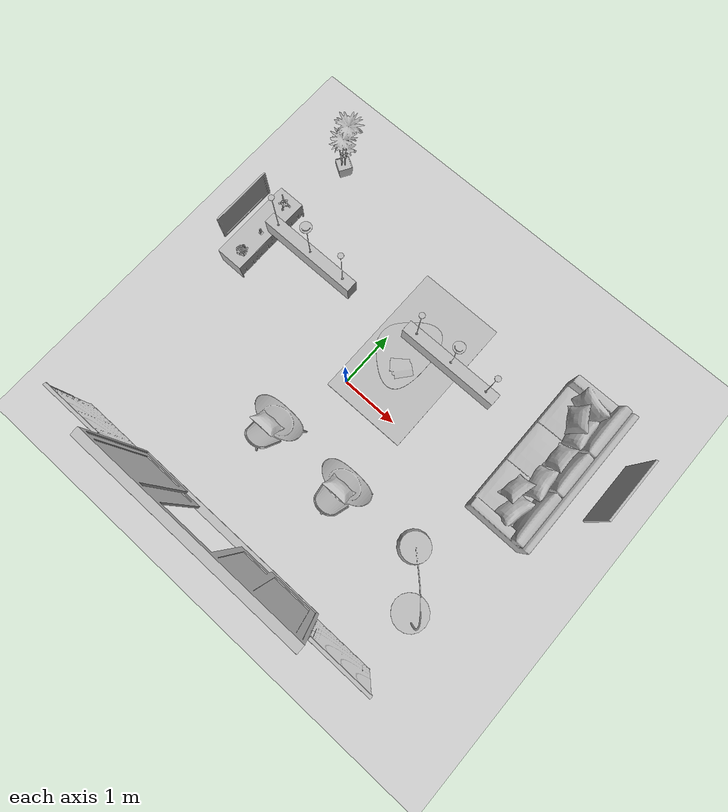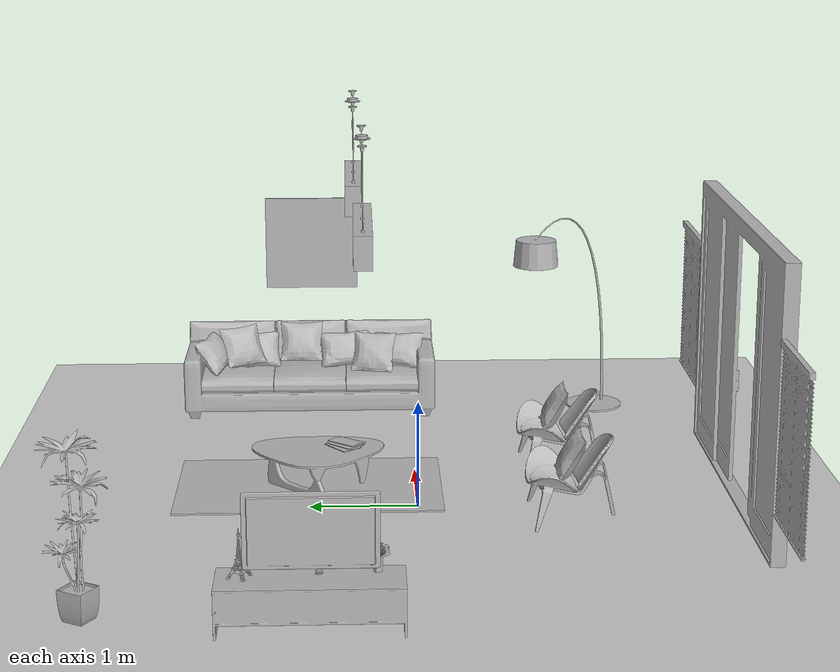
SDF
<sdf version="1.4">
 <world name="default">
  <light name="sun" type="directional">
   <pose>0 0 10 0 -0 0</pose>
   <diffuse>0.8 0.8 0.8 1</diffuse>
   <specular>0.2 0.2 0.2 1</specular>
   <attenuation>
    <range>1000</range>
    <constant>0.9</constant>
    <linear>0.01</linear>
    <quadratic>0.001</quadratic>
   </attenuation>
   <direction>-0.5 0.1 -0.9</direction>
  </light>
  <model name="ground_plane">
   <static>1</static>
   <link name="link">
    <collision name="collision">
     <geometry><plane><normal>0 0 1</normal><size>100 100</size></plane></geometry>
     <surface><friction><ode><mu>100</mu><mu2>50</mu2></ode></friction></surface>
    </collision>
    <visual name="visual">
     <cast_shadows>0</cast_shadows>
     <geometry><plane><normal>0 0 1</normal><size>100 100</size></plane></geometry>
     <material>
      <script><uri>file://media/materials/scripts/gazebo.material</uri><name>Gazebo/Grey</name></script>
     </material>
    </visual>
    <velocity_decay><linear>0</linear><angular>0</angular></velocity_decay>
   </link>
  </model>
  <physics type="ode">
   <max_step_size>0.001</max_step_size>
   <real_time_factor>1</real_time_factor>
   <real_time_update_rate>1000</real_time_update_rate>
   <gravity>0 0 -9.8</gravity>
  </physics>
  <scene><ambient>0.4 0.4 0.4 1</ambient><background>0.7 0.7 0.7 1</background><shadows>1</shadows></scene>
  <spherical_coordinates>
   <surface_model>EARTH_WGS84</surface_model>
   <latitude_deg>0</latitude_deg>
   <longitude_deg>0</longitude_deg>
   <elevation>0</elevation>
   <heading_deg>0</heading_deg>
  </spherical_coordinates>
  <model name="756_0">
   <pose>0.225038 -2.99594 0 0 0 -1.5708</pose>
   <static>1</static>
   <link name="link">
    <collision name="collision"><geometry><box><size>0.135 3.7 2</size></box></geometry></collision>
    <visual name="visual"><geometry><mesh><uri>model://756/756.dae</uri></mesh></geometry></visual>
    <velocity_decay><linear>0</linear><angular>0</angular></velocity_decay>
   </link>
  </model>
  <model name="s__1290_0">
   <pose>3.20716 1.05075 0.01 0 -0 3.14159</pose>
   <static>1</static>
   <link name="link">
    <collision name="collision"><geometry><box><size>1.05 2.64995 2</size></box></geometry></collision>
    <visual name="visual"><geometry><mesh><uri>model://s__1290/s__1290.dae</uri></mesh></geometry></visual>
    <velocity_decay><linear>0</linear><angular>0</angular></velocity_decay>
   </link>
  </model>
  <model name="s__1701_0">
   <pose>1.10371 -1.41456 0.01 0 -0 1.5708</pose>
   <static>1</static>
   <link name="link">
    <collision name="collision"><geometry><box><size>0.82 0.91 2</size></box></geometry></collision>
    <visual name="visual"><geometry><mesh><uri>model://s__1701/s__1701.dae</uri></mesh></geometry></visual>
    <velocity_decay><linear>0</linear><angular>0</angular></velocity_decay>
   </link>
  </model>
  <model name="238_0">
   <pose>0.551708 1.01475 0.01 0 -0 0</pose>
   <static>1</static>
   <link name="link">
    <collision name="collision"><geometry><box><size>1.5 2.5 0</size></box></geometry></collision>
    <visual name="visual"><geometry><mesh><uri>model://238/238.dae</uri></mesh></geometry></visual>
    <velocity_decay><linear>0</linear><angular>0</angular></velocity_decay>
   </link>
  </model>
  <model name="s__702_0">
   <pose>-2.72569 0.937162 0.01 0 -0 0</pose>
   <static>1</static>
   <link name="link">
    <collision name="collision"><geometry><box><size>0.48 1.5 2</size></box></geometry></collision>
    <visual name="visual"><geometry><mesh><uri>model://s__702/s__702.dae</uri></mesh></geometry></visual>
    <velocity_decay><linear>0</linear><angular>0</angular></velocity_decay>
   </link>
  </model>
  <model name="216_0">
   <pose>-2.9763 0.918757 0.60356 0 -0 0</pose>
   <static>1</static>
   <link name="link">
    <collision name="collision"><geometry><box><size>0.05 1.05992 2</size></box></geometry></collision>
    <visual name="visual"><geometry><mesh><uri>model://216/216.dae</uri></mesh></geometry></visual>
    <velocity_decay><linear>0</linear><angular>0</angular></velocity_decay>
   </link>
  </model>
  <model name="s__1720_0">
   <pose>0.395707 0.93075 0.01 0 -0 0</pose>
   <static>1</static>
   <link name="link">
    <collision name="collision"><geometry><box><size>0.9 1.25 2</size></box></geometry></collision>
    <visual name="visual"><geometry><mesh><uri>model://s__1720/s__1720.dae</uri></mesh></geometry></visual>
    <velocity_decay><linear>0</linear><angular>0</angular></velocity_decay>
   </link>
  </model>
  <model name="s__1819_0">
   <pose>-2.6479 0.870751 0.425926 0 -0 0</pose>
   <static>1</static>
   <link name="link">
    <collision name="collision"><geometry><box><size>0.07 0.06 2</size></box></geometry></collision>
    <visual name="visual"><geometry><mesh><uri>model://s__1819/s__1819.dae</uri></mesh></geometry></visual>
    <velocity_decay><linear>0</linear><angular>0</angular></velocity_decay>
   </link>
  </model>
  <model name="739_0">
   <pose>-2.60154 0.406961 0.418284 0 -0 0.349066</pose>
   <static>1</static>
   <link name="link">
    <collision name="collision"><geometry><box><size>0.206748 0.202036 2</size></box></geometry></collision>
    <visual name="visual"><geometry><mesh><uri>model://739/739.dae</uri></mesh></geometry></visual>
    <velocity_decay><linear>0</linear><angular>0</angular></velocity_decay>
   </link>
  </model>
  <model name="s__1845_0">
   <pose>-2.69926 1.48954 0.429934 0 0 -0.418879</pose>
   <static>1</static>
   <link name="link">
    <collision name="collision"><geometry><box><size>0.16 0.16 2</size></box></geometry></collision>
    <visual name="visual"><geometry><mesh><uri>model://s__1845/s__1845.dae</uri></mesh></geometry></visual>
    <velocity_decay><linear>0</linear><angular>0</angular></velocity_decay>
   </link>
  </model>
  <model name="s__1701_1">
   <pose>-0.326227 -1.37433 0.01 0 -0 1.5708</pose>
   <static>1</static>
   <link name="link">
    <collision name="collision"><geometry><box><size>0.82 0.91 2</size></box></geometry></collision>
    <visual name="visual"><geometry><mesh><uri>model://s__1701/s__1701.dae</uri></mesh></geometry></visual>
    <velocity_decay><linear>0</linear><angular>0</angular></velocity_decay>
   </link>
  </model>
  <model name="s__1654_0">
   <pose>3.23314 1.14414 0.528015 0 0 -3.14159</pose>
   <static>1</static>
   <link name="link">
    <collision name="collision"><geometry><box><size>0.24 0.45 2</size></box></geometry></collision>
    <visual name="visual"><geometry><mesh><uri>model://s__1654/s__1654.dae</uri></mesh></geometry></visual>
    <velocity_decay><linear>0</linear><angular>0</angular></velocity_decay>
   </link>
  </model>
  <model name="s__1654_1">
   <pose>3.0417 0.37657 0.453894 0 -0 2.93215</pose>
   <static>1</static>
   <link name="link">
    <collision name="collision"><geometry><box><size>0.24 0.45 2</size></box></geometry></collision>
    <visual name="visual"><geometry><mesh><uri>model://s__1654/s__1654.dae</uri></mesh></geometry></visual>
    <velocity_decay><linear>0</linear><angular>0</angular></velocity_decay>
   </link>
  </model>
  <model name="s__1654_2">
   <pose>3.07871 1.76511 0.526326 0 0 -2.60054</pose>
   <static>1</static>
   <link name="link">
    <collision name="collision"><geometry><box><size>0.24 0.45 2</size></box></geometry></collision>
    <visual name="visual"><geometry><mesh><uri>model://s__1654/s__1654.dae</uri></mesh></geometry></visual>
    <velocity_decay><linear>0</linear><angular>0</angular></velocity_decay>
   </link>
  </model>
  <model name="s__1813_0">
   <pose>0.575713 0.666744 0.42 0 -0 0.645772</pose>
   <static>1</static>
   <link name="link">
    <collision name="collision"><geometry><box><size>0.379975 0.329873 2</size></box></geometry></collision>
    <visual name="visual"><geometry><mesh><uri>model://s__1813/s__1813.dae</uri></mesh></geometry></visual>
    <velocity_decay><linear>0</linear><angular>0</angular></velocity_decay>
   </link>
  </model>
  <model name="623_0">
   <pose>-2.47229 2.79075 0.01 0 0 -0.541052</pose>
   <static>1</static>
   <link name="link">
    <collision name="collision"><geometry><box><size>0.529798 0.561408 2</size></box></geometry></collision>
    <visual name="visual"><geometry><mesh><uri>model://623/623.dae</uri></mesh></geometry></visual>
    <velocity_decay><linear>0</linear><angular>0</angular></velocity_decay>
   </link>
  </model>
  <model name="747_0">
   <pose>2.59124 -2.94705 0.483698 0 -0 1.5708</pose>
   <static>1</static>
   <link name="link">
    <collision name="collision"><geometry><box><size>0.05 1 2</size></box></geometry></collision>
    <visual name="visual"><geometry><mesh><uri>model://747/747.dae</uri></mesh></geometry></visual>
    <velocity_decay><linear>0</linear><angular>0</angular></velocity_decay>
   </link>
  </model>
  <model name="747_1">
   <pose>-2.14019 -2.94673 0.463838 0 -0 1.5708</pose>
   <static>1</static>
   <link name="link">
    <collision name="collision"><geometry><box><size>0.05 1 2</size></box></geometry></collision>
    <visual name="visual"><geometry><mesh><uri>model://747/747.dae</uri></mesh></geometry></visual>
    <velocity_decay><linear>0</linear><angular>0</angular></velocity_decay>
   </link>
  </model>
  <model name="s__1719_0">
   <pose>2.75237 -1.67361 0.01 0 -0 2.35619</pose>
   <static>1</static>
   <link name="link">
    <collision name="collision"><geometry><box><size>1.54986 0.6 2</size></box></geometry></collision>
    <visual name="visual"><geometry><mesh><uri>model://s__1719/s__1719.dae</uri></mesh></geometry></visual>
    <velocity_decay><linear>0</linear><angular>0</angular></velocity_decay>
   </link>
  </model>
  <model name="781_0">
   <pose>3.94447 1.03875 1.14 0 0 -3.14159</pose>
   <static>1</static>
   <link name="link">
    <collision name="collision"><geometry><box><size>0.03 1 2</size></box></geometry></collision>
    <visual name="visual"><geometry><mesh><uri>model://781/781.dae</uri></mesh></geometry></visual>
    <velocity_decay><linear>0</linear><angular>0</angular></velocity_decay>
   </link>
  </model>
  <model name="s__1654_3">
   <pose>1.09171 -1.35553 0.43 0 -0 1.5708</pose>
   <static>1</static>
   <link name="link">
    <collision name="collision"><geometry><box><size>0.24 0.45 2</size></box></geometry></collision>
    <visual name="visual"><geometry><mesh><uri>model://s__1654/s__1654.dae</uri></mesh></geometry></visual>
    <velocity_decay><linear>0</linear><angular>0</angular></velocity_decay>
   </link>
  </model>
  <model name="s__1654_4">
   <pose>-0.374338 -1.35235 0.43 0 -0 1.5708</pose>
   <static>1</static>
   <link name="link">
    <collision name="collision"><geometry><box><size>0.24 0.45 2</size></box></geometry></collision>
    <visual name="visual"><geometry><mesh><uri>model://s__1654/s__1654.dae</uri></mesh></geometry></visual>
    <velocity_decay><linear>0</linear><angular>0</angular></velocity_decay>
   </link>
  </model>
  <model name="s__1883_0">
   <pose>-0.972292 0.49875 2.62 0 0 -1.5708</pose>
   <static>1</static>
   <link name="link">
    <collision name="collision"><geometry><box><size>0.16 1.38006 2</size></box></geometry></collision>
    <visual name="visual"><geometry><mesh><uri>model://s__1883/s__1883.dae</uri></mesh></geometry></visual>
    <velocity_decay><linear>0</linear><angular>0</angular></velocity_decay>
   </link>
  </model>
  <model name="s__1883_1">
   <pose>1.22371 0.570751 2.62 0 0 -1.5708</pose>
   <static>1</static>
   <link name="link">
    <collision name="collision"><geometry><box><size>0.16 1.38006 2</size></box></geometry></collision>
    <visual name="visual"><geometry><mesh><uri>model://s__1883/s__1883.dae</uri></mesh></geometry></visual>
    <velocity_decay><linear>0</linear><angular>0</angular></velocity_decay>
   </link>
  </model>
 </world>
</sdf>
